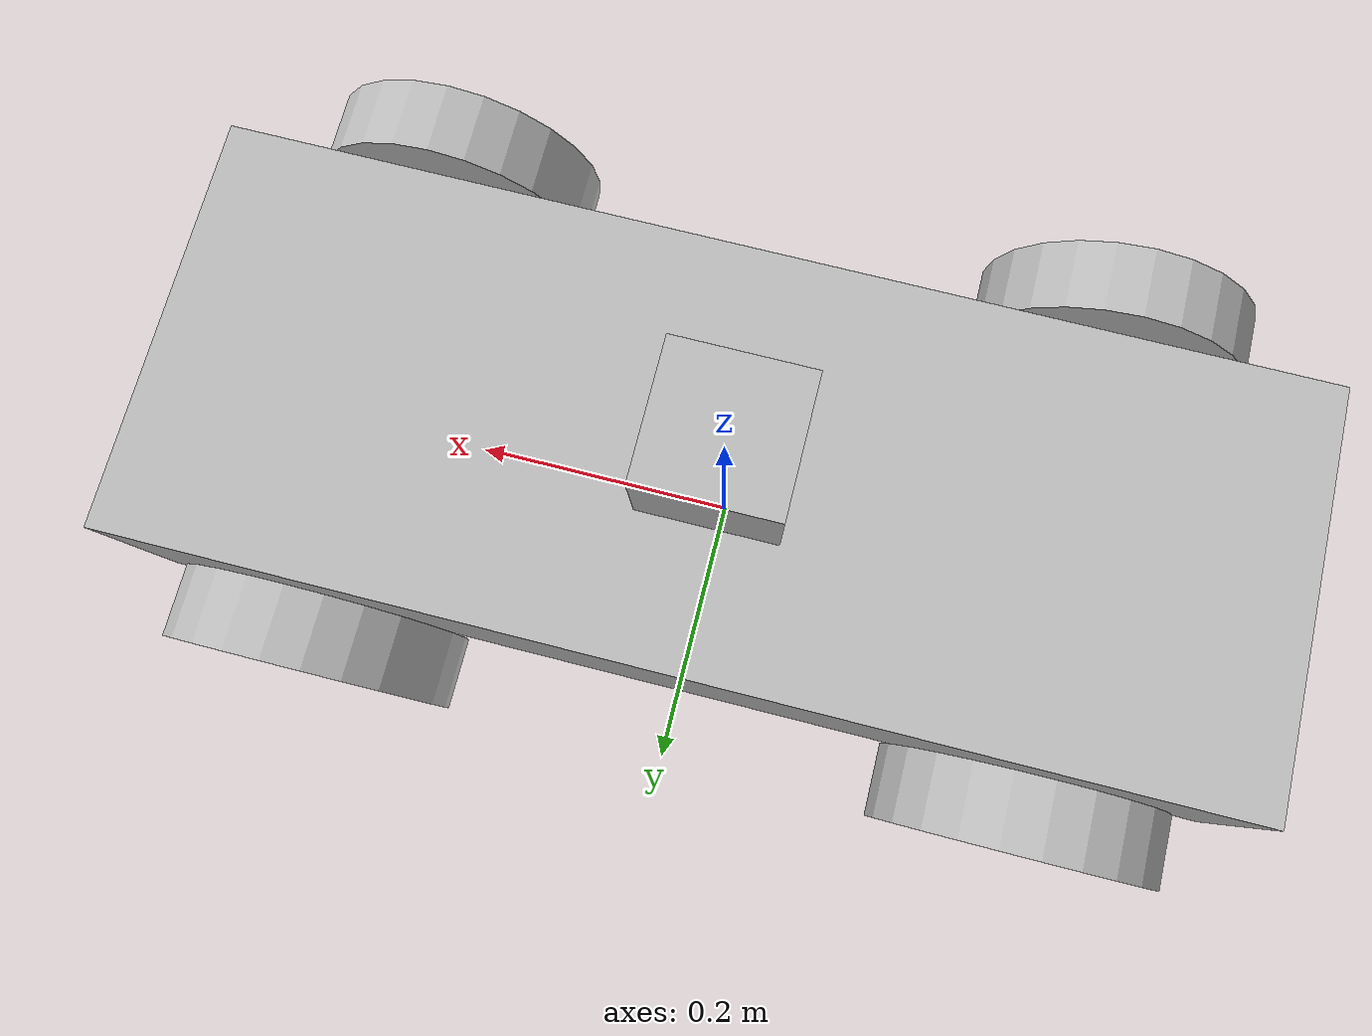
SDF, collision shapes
<sdf version="1.5">
  <model name="haruto_robot">
    <static>false</static>

    <!-- construct chasis for the robot -->
    <link name='chassis'>
      <pose>0 0 .1 0 0 0</pose>
      <collision name='collision'>
        <geometry>
          <box>
            <size>.8 .3 .15</size>
          </box>
        </geometry>
      </collision>
      <visual name='visual'>
        <geometry>
          <box>
            <size>.8 .3 .15</size>
          </box>
        </geometry>
      </visual>
    </link>

    <!-- construct back left wheel for robot -->
    <link name="back_left_wheel">
      <pose>0.25 0.18 0.1 0 1.5707 1.5707</pose>
      <collision name="collision">
        <geometry>
          <cylinder>
            <radius>.1</radius>
            <length>.05</length>
          </cylinder>
        </geometry>
      </collision>
      <visual name="visual">
        <geometry>
          <cylinder>
            <radius>.1</radius>
            <length>.05</length>
          </cylinder>
        </geometry>
      </visual>
    </link>

    <!-- construct back right wheel for robot -->
    <link name="back_right_wheel">
      <pose>0.25 -0.18 0.1 0 1.5707 1.5707</pose>
      <collision name="collision">
        <geometry>
          <cylinder>
            <radius>.1</radius>
            <length>.05</length>
          </cylinder>
        </geometry>
      </collision>
      <visual name="visual">
        <geometry>
          <cylinder>
            <radius>.1</radius>
            <length>.05</length>
          </cylinder>
        </geometry>
      </visual>
    </link>

    <!-- construct front left wheel for robot -->
    <link name="front_left_wheel">
      <pose>-0.25 0.18 0.1 0 1.5707 1.5707</pose>
      <collision name="collision">
        <geometry>
          <cylinder>
            <radius>.1</radius>
            <length>.05</length>
          </cylinder>
        </geometry>
      </collision>
      <visual name="visual">
        <geometry>
          <cylinder>
            <radius>.1</radius>
            <length>.05</length>
          </cylinder>
        </geometry>
      </visual>
    </link>

    <!-- construct front right wheel for robot -->
    <link name="front_right_wheel">
      <pose>-0.25 -0.18 0.1 0 1.5707 1.5707</pose>
      <collision name="collision">
        <geometry>
          <cylinder>
            <radius>.1</radius>
            <length>.05</length>
          </cylinder>
        </geometry>
      </collision>
      <visual name="visual">
        <geometry>
          <cylinder>
            <radius>.1</radius>
            <length>.05</length>
          </cylinder>
        </geometry>
      </visual>
    </link>

    <!-- construct laser for robot -->
    <link name="hokuyo_link">
      <collision name="collision">
        <pose>0 0 0.20 0 0 0</pose>
        <geometry>
          <box>
            <size>0.1 0.1 0.1</size>
          </box>
        </geometry>
      </collision>

      <visual name="visual">
        <pose>0 0 0.20 0 0 0</pose>
        <geometry>
          <mesh>
            <uri>file://meshes/hokuyo.dae</uri>
          </mesh>
        </geometry>
      </visual>

      <!-- Adding sensor scan field configuration -->
      <sensor type="gpu_ray" name="laser">
        <pose>0 0 0.22 0 0 0</pose>
        <visualize>false</visualize>
        <update_rate>10</update_rate>
        <ray>
          <scan>
            <horizontal>
              <samples>1024</samples>
              <resolution>1</resolution>
              <min_angle>-3.141593</min_angle>
              <max_angle>3.141593</max_angle>
            </horizontal>
          </scan>
          <range>
            <min>0.1</min>
            <max>5</max>
            <resolution>0.1</resolution>
          </range>
        </ray>

        <!-- Adding laser plugin -->
        <plugin name="hokuyo_node" filename="libgazebo_ros_gpu_laser.so">
          <robotNamespace></robotNamespace>
          <topicName>/scan</topicName>
          <frameName>/laser_link</frameName>
        </plugin>
      </sensor>
    </link>

    <!-- construct imu for robot -->
    <link name="imu_link">
      <visual name="visual">
        <pose>0 0 0.15 0 0 0</pose>
        <geometry>
          <box>
            <size>0.001 0.001 0.001</size>
          </box>
        </geometry>
      </visual>

      <collision name="collision">
        <pose>0 0 0.15 0 0 0</pose>
        <geometry>
          <box>
            <size>0.001 0.001 0.001</size>
          </box>
        </geometry>
      </collision>

      <!-- Adding sensor configuration -->
      <sensor type="imu" name="imu">
        <pose>0 0 0.15 0 0 0</pose>
        <always_on>true</always_on>
        <update_rate>100</update_rate>
        <visualize>true</visualize>

        <plugin name="imu_plugin" filename="libgazebo_ros_imu_sensor.so">
          <robotNamespace></robotNamespace>
          <topicName>imu</topicName>
          <bodyName>imu_link</bodyName>
          <updateRateHZ>100</updateRateHZ>
          <gaussianNoise>0.0</gaussianNoise>
          <xyzOffset>0 0 0</xyzOffset>
          <rpyOffset>0 0 0</rpyOffset>
          <frameName>imu_link</frameName>
          <initialOrientationAsReference>false</initialOrientationAsReference>
        </plugin>
      </sensor>
    </link>

    <!-- joint for back left wheel of revolute type rotates about y axis -->
    <joint type="revolute" name="back_left_wheel_hinge">
      <pose>0 0 -0.03 0 0 0</pose>
      <child>back_left_wheel</child>
      <parent>chassis</parent>
      <axis>
        <xyz>0 0 1</xyz>
      </axis>
    </joint>

    <!-- joint for back right wheel of revolute type rotates about y axis -->
    <joint type="revolute" name="back_right_wheel_hinge">
      <pose>0 0 0.03 0 0 0</pose>
      <child>back_right_wheel</child>
      <parent>chassis</parent>
      <axis>
        <xyz>0 0 1</xyz>
      </axis>
    </joint>

    <!-- joint for front left wheel of revolute type rotates about y axis -->
    <joint type="revolute" name="front_left_wheel_hinge">
      <pose>0 0 -0.03 0 0 0</pose>
      <child>front_left_wheel</child>
      <parent>chassis</parent>
      <axis>
        <xyz>0 0 1</xyz>
      </axis>
    </joint>

    <!-- joint for front right wheel of revolute type rotates about y axis -->
    <joint type="revolute" name="front_right_wheel_hinge">
      <pose>0 0 0.03 0 0 0</pose>
      <child>front_right_wheel</child>
      <parent>chassis</parent>
      <axis>
        <xyz>0 0 1</xyz>
      </axis>
    </joint>

    <!-- fixed joint for hokoyo laser with chassis -->
    <joint name="hokuyo_joint" type="fixed">
      <pose>0 0 0.03 0 0 0</pose>
      <parent>chassis</parent>
      <child>hokuyo_link</child>
    </joint>

    <!-- fixed joint for imu with chassis -->
    <joint name="imu_joint" type="fixed">
      <pose>0 0 0.03 0 0 0</pose>
      <parent>chassis</parent>
      <child>imu_link</child>
    </joint>

    <!-- Adding skid steer drive plugin -->
    <plugin name="skid_steer_drive_controller" filename="libgazebo_ros_skid_steer_drive.so">
      <updateRate>100.0</updateRate>
      <robotNamespace>/</robotNamespace>
      <leftFrontJoint>front_left_wheel_hinge</leftFrontJoint>
      <rightFrontJoint>front_right_wheel_hinge</rightFrontJoint>
      <leftRearJoint>back_left_wheel_hinge</leftRearJoint>
      <rightRearJoint>back_right_wheel_hinge</rightRearJoint>
      <wheelSeparation>0.325</wheelSeparation>
      <wheelDiameter>0.2</wheelDiameter>
      <robotBaseFrame>base_link</robotBaseFrame>
      <torque>2</torque>
      <commandTopic>cmd_vel</commandTopic>
      <odometryTopic>odom</odometryTopic>
      <odometryFrame>odom</odometryFrame>
      <broadcastTF>true</broadcastTF>
    </plugin>

  </model>
</sdf>
